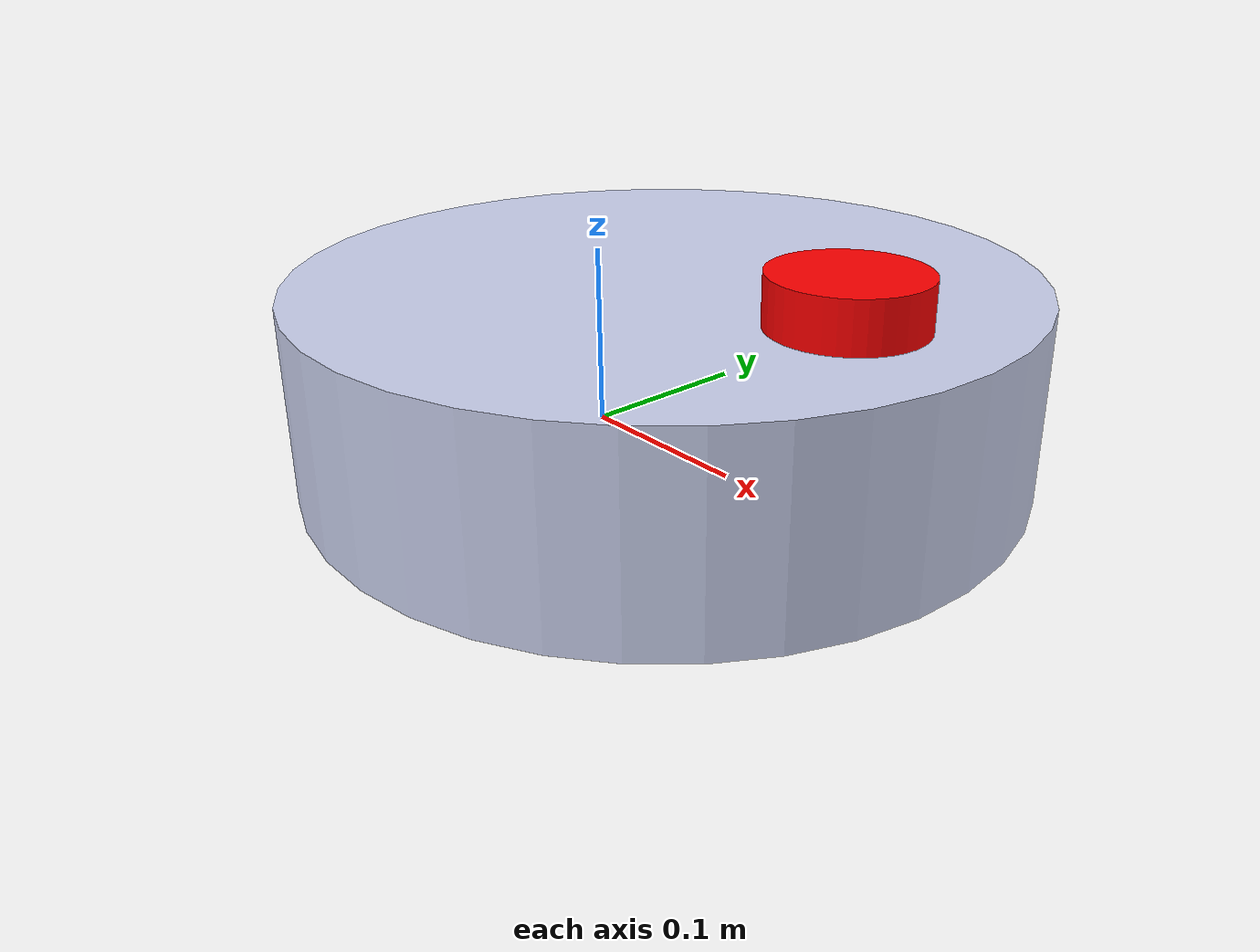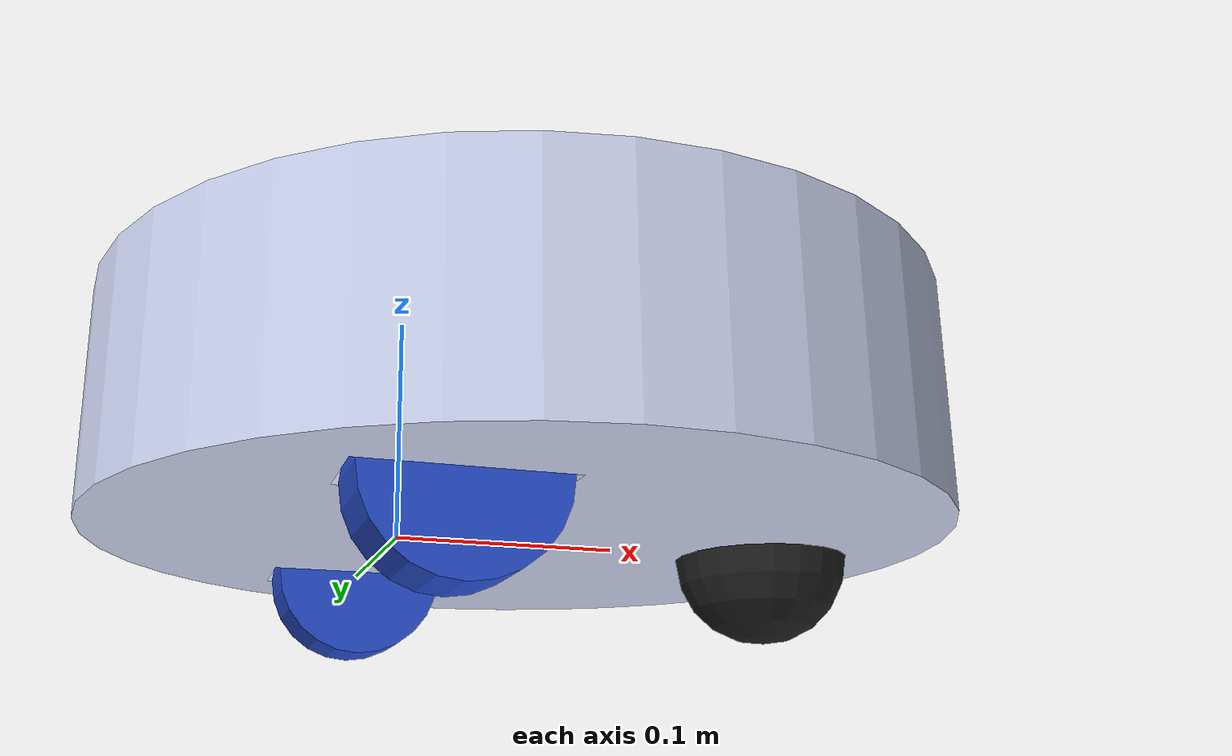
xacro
<?xml version="1.0"?>
<robot xmlns:xacro="http://www.ros.org/wiki/xacro"  name="robot">

    <!-- deleted xacro including of inertial_macros.xacro-->
    <xacro:include filename="robot_core.xacro"/>
    <xacro:arg name="use_ros2_control" default="true"/>
    <xacro:arg name="sim_mode" default="false"/>
    <xacro:if value="$(arg use_ros2_control)">
        <xacro:include filename="ros2_control.xacro" />
    </xacro:if>
    <xacro:unless value="$(arg use_ros2_control)">
        <xacro:include filename="gazebo_control.xacro" />
    </xacro:unless>
    <xacro:include filename="lidar.xacro"/>

</robot>

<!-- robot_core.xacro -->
<robot xmlns:xacro="http://www.ros.org/wiki/xacro">

    <xacro:include filename="inertial_macros.xacro" />

    <link name="base_link">
    </link>

    <joint name="base_footprint_joint" type="fixed">
        <parent link="base_link"/>
        <child link="base_footprint"/>
        <origin xyz="0 0 0" rpy="0 0 0"/>
    </joint>

    <link name="base_footprint">
    </link>

    <joint name="chassis_joint" type="fixed">
        <parent link="base_link"/>
        <child link="chassis"/>
        <origin xyz="0 0 0" rpy="0 0 0"/>
    </joint>

    <link name="chassis">
        <!-- mass= 10.9111229879667 -->
        <inertial>
            <origin xyz="0 0 0" rpy="0 0 0"/>
            <mass value="10.9111229879667"/>
            <inertia ixx="0.106836706468418" ixy="-2.056076220611E-19" ixz="0.000573171794696589" iyy="0.109646040415498" iyz="-8.5997885509867E-20" izz="0.198258682922409" />
        </inertial>

        <visual>
            <origin xyz="0 0 0" rpy="0 0 0" />
            <geometry>
                <mesh filename="file://$(find pico_bot)/meshes/chassis.STL" />
            </geometry>
            <material name="">
                <color rgba="0.792156862745098 0.819607843137255 0.933333333333333 1" />
            </material>
        </visual>

        <collision>
            <origin xyz="0 0 0" rpy="0 0 0" />
            <geometry>
                <mesh filename="file://$(find pico_bot)/meshes/chassis.STL" />
            </geometry>
        </collision>

    </link>

    <gazebo reference="chassis">
        <material>
            Gazebo/White
        </material>
    </gazebo>

    <joint name="left_wheel_joint" type="continuous">
        <parent link="base_link"/>
        <child link="left_wheel"/>
        <origin xyz="0 0.106 0" rpy="-${pi/2} 0 0"/>
        <axis xyz="0 0 1"/>
    </joint>

    <link name="left_wheel">

        <xacro:inertial_cylinder mass="0.1" length="0.035" radius="0.04">
            <origin xyz="0 0 0" rpy="0 0 0"/>
        </xacro:inertial_cylinder>

        <visual>
            <geometry>
                <cylinder length="0.035" radius="0.04"/>
            </geometry>
            <material name="blue"/>
        </visual>

        <collision>
            <geometry>
                <cylinder length="0.035" radius="0.04"/>
            </geometry>
        </collision>

    </link>

    <gazebo reference="left_wheel">
        <material>
            Gazebo/Blue
        </material>
    </gazebo>

    <joint name="right_wheel_joint" type="continuous">
        <parent link="base_link"/>
        <child link="right_wheel"/>
        <origin xyz="0 -0.106 0" rpy="${pi/2} 0 0"/>
        <axis xyz="0 0 -1"/>
    </joint>

    <link name="right_wheel">

        <xacro:inertial_cylinder mass="0.1" length="0.035" radius="0.04">
            <origin xyz="0 0 0" rpy="0 0 0"/>
        </xacro:inertial_cylinder>

        <visual>
            <geometry>
                <cylinder length="0.035" radius="0.04" />
            </geometry>
            <material name="blue"/>
        </visual>

        <collision>
            <geometry>
                <cylinder length="0.035" radius="0.04"/>
            </geometry>
        </collision>

    </link>

    <gazebo reference="right_wheel">
        <material>
            Gazebo/Blue
        </material>
    </gazebo>

    <joint name="caster_wheel_joint" type="fixed">
        <parent link="chassis"/>
        <child link="caster_wheel"/>
        <origin xyz="0.1765 0 0" rpy="0 0 0"/>
    </joint>

    <link name="caster_wheel">

        <xacro:inertial_sphere mass="0.5" radius="0.04"> <!-- Mass changed to 0.5 to fix tilting,, previous mass was 0.1-->
            <origin xyz="0 0 0" rpy="0 0 0"/>
        </xacro:inertial_sphere>

        <visual>
            <geometry>
                <sphere radius="0.04" />
            </geometry>
            <material name="black"/>
        </visual>

        <collision>
            <geometry>
                <sphere radius="0.04" />
            </geometry>
        </collision>
    </link>

    <gazebo reference="caster_wheel">
        <material>
            Gazebo/Black
        </material>
        <mu1 value="0.01"/>
        <mu2 value="0.01"/>
    </gazebo>

</robot>

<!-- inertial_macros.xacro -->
<robot xmlns:xacro="http://www.ros.org/wiki/xacro" >

    <!-- Specify some standard inertial calculations https://en.wikipedia.org/wiki/List_of_moments_of_inertia -->
    <!-- These make use of xacro's mathematical functionality -->

    <xacro:macro name="inertial_sphere" params="mass radius *origin">
        <inertial>
            <xacro:insert_block name="origin"/>
            <mass value="${mass}" />
            <inertia ixx="${(2/5) * mass * (radius*radius)}" ixy="0.0" ixz="0.0"
                    iyy="${(2/5) * mass * (radius*radius)}" iyz="0.0"
                    izz="${(2/5) * mass * (radius*radius)}" />
        </inertial>
    </xacro:macro>

    <xacro:macro name="inertial_box" params="mass ixx ixy ixz iyy iyz izz *origin">
        <inertial>
            <xacro:insert_block name="origin"/>
            <mass value="${mass}" />
            <inertia ixx="ixx" ixy="ixy" ixz="ixz"
                    iyy="iyy" iyz="iyz"
                    izz="izz" />
        </inertial>
    </xacro:macro>

    <xacro:macro name="inertial_cylinder" params="mass length radius *origin">
        <inertial>
            <xacro:insert_block name="origin"/>
            <mass value="${mass}" />
            <inertia ixx="${(1/12) * mass * (3*radius*radius + length*length)}" ixy="0.0" ixz="0.0"
                    iyy="${(1/12) * mass * (3*radius*radius + length*length)}" iyz="0.0"
                    izz="${(1/2) * mass * (radius*radius)}" />
        </inertial>
    </xacro:macro>

</robot>

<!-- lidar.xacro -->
<robot xmlns:xacro="http://www.ros.org/wiki/xacro"  name="robot">

    <joint name="laser_joint" type="fixed">
        <origin xyz="0.0 0.0 0.0" rpy="0.0 0.0 0.0"/>
        <parent link="chassis"/>
        <child link="laser_frame"/>
        <origin xyz="0.1715 1.22881354243285E-17 0.11" rpy="0 0 0"/>
    </joint>

    <link name="laser_frame">

        <visual>
            <origin xyz="0 0 0" rpy="0 0 0" />
            <geometry>
                <mesh filename="file://$(find pico_bot)/meshes/lidar.STL" />
            </geometry>
            <material name="">
                <color rgba="1 0 0 1" />
            </material>
        </visual>

        <collision>
            <geometry>
                <cylinder radius="0.035" length="0.03"/>
            </geometry>
        </collision>

        <xacro:inertial_cylinder mass="0.1" length="0.04" radius="0.05">
            <origin xyz="0.1715 1.22881354243285E-17 0.11" rpy="0 0 0"/>
        </xacro:inertial_cylinder>

    </link>

    <material name="red">
        <color rgba="1 0 0 1"/>
    </material>

    <gazebo reference="laser_frame">
        <material>Gazebo/Black</material>

    <sensor name="laser" type="ray">
        <pose> 0.122 1.22881354243285E-17 0.11 0 0 0 </pose>
        <visualize>true</visualize>
        <update_rate>20</update_rate>

        <ray>
            <scan>
                <horizontal>
                    <samples>360</samples>
                    <min_angle>-3.14</min_angle>
                    <max_angle>3.14</max_angle>
                </horizontal>
            </scan>
            <range>
                <min>0.3</min>
                <max>12</max>
            </range>
        </ray>

        <plugin name="laser_controller" filename="libgazebo_ros_ray_sensor.so">
            <ros>
                <argument>~/out:=scan</argument>
            </ros>
            <output_type>sensor_msgs/LaserScan</output_type>
            <frame_name>laser_frame</frame_name>
        </plugin>
    </sensor>

    </gazebo>

</robot>
